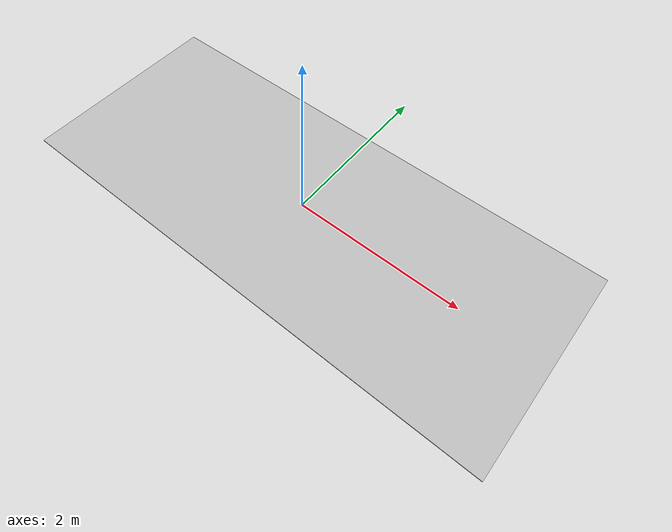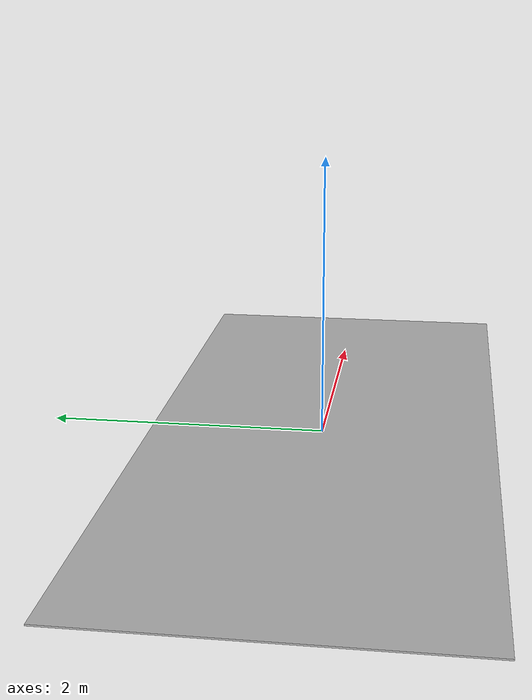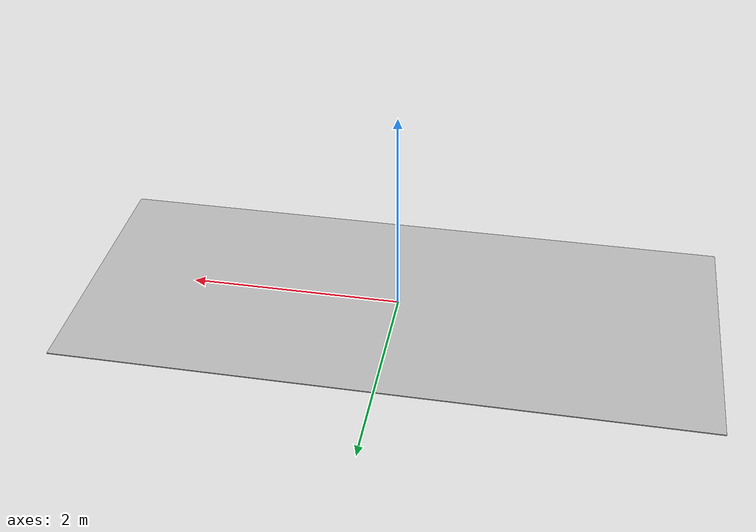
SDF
<?xml version="1.0" ?>
<sdf version="1.7">
    <model name='iron_net'>
      <static>true</static>
      <link name="iron_net">
        <pose frame=''> 0.0 0.0 0.0 0.0 0.0 0.0</pose>
        <visual name="visual">
            <cast_shadows>false</cast_shadows>
            <geometry>
              <box>
                <size>6.0 2.5 0.01</size>
              </box>
            </geometry>
            <material>
              <script>
                <uri>model://iron_net/iron_net.material</uri>
                <name>iron_net</name>
              </script>
            </material>
        </visual>
      </link>
    </model>
</sdf>
